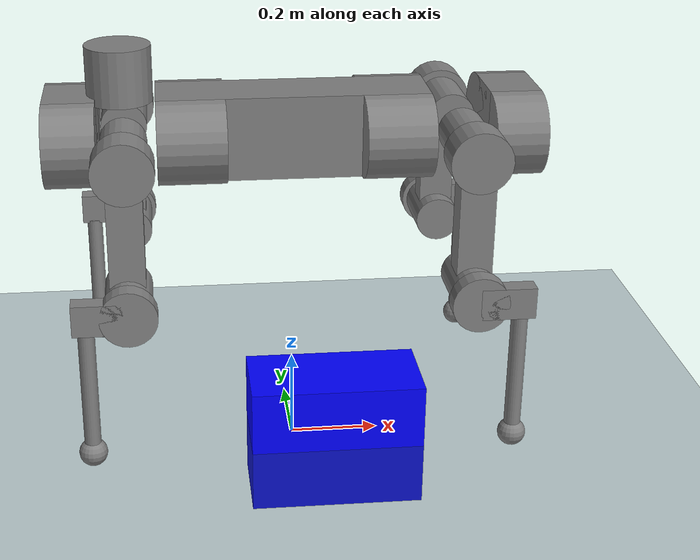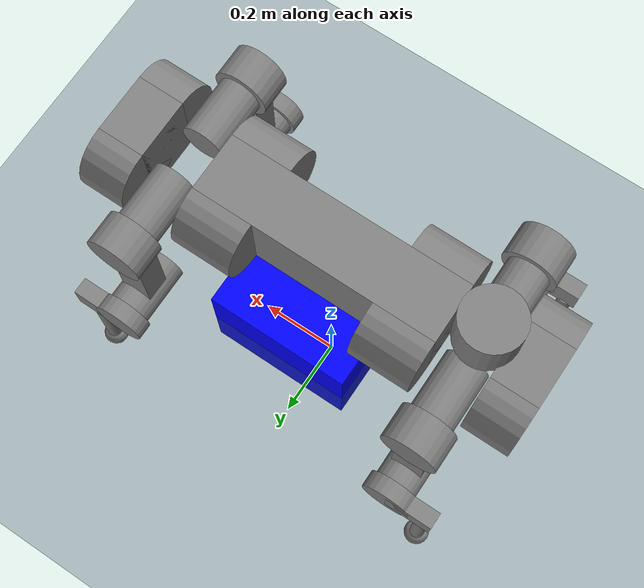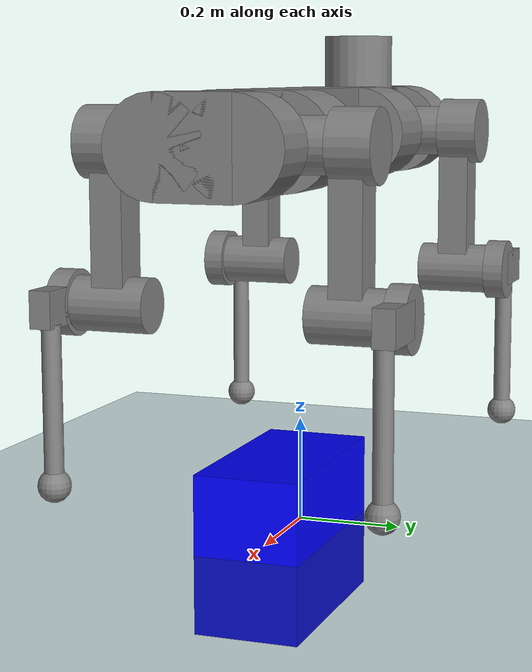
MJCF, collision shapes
<mujoco model="anymal">
  <compiler angle="radian" meshdir="../meshes/"/>

  <asset>
    <texture type="skybox" builtin="gradient" rgb1="0.3 0.5 0.7" rgb2="0 0 0" width="512" height="512" />
    <texture name="texplane" type="2d" builtin="checker" rgb1=".2 .3 .4" rgb2=".1 0.15 0.2" width="512" height="512" mark="cross" markrgb=".8 .8 .8" />
    <material name="matplane" reflectance="0.3" texture="texplane" texrepeat="1 1" texuniform="true" />

    <mesh name="base" file="base.obj"/>
    <mesh name="top_shell" file="top_shell.obj"/>
    <mesh name="bottom_shell" file="bottom_shell.obj"/>
    <mesh name="remote" file="remote.obj"/>
    <mesh name="handle" file="handle.obj"/>
    <mesh name="face" file="face.obj"/>
    <mesh name="depth_camera" file="depth_camera.obj"/>
    <mesh name="wide_angle_camera" file="wide_angle_camera.obj"/>
    <mesh name="battery" file="battery.obj"/>
    <mesh name="lidar_cage" file="lidar_cage.obj"/>
    <mesh name="lidar" file="lidar.obj"/>
    <mesh name="drive" file="drive.obj"/>
    <mesh name="hip_l" file="hip_l.obj"/>
    <mesh name="thigh" file="thigh.obj"/>
    <mesh name="shank_l" file="shank_l.obj"/>
    <mesh name="foot" file="foot.obj"/>
    <mesh name="hip_r" file="hip_r.obj"/>
    <mesh name="shank_r" file="shank_r.obj"/>
    <mesh name="hatch" file="hatch.obj"/>
  </asset>

  <worldbody>
    <light directional="true" diffuse=".4 .4 .4" specular="0.1 0.1 0.1" pos="0 0 5.0" dir="0 0 -1" castshadow="false" />
    <light directional="true" diffuse=".6 .6 .6" specular="0.2 0.2 0.2" pos="0 0 4" dir="0 0 -1" />
    <geom name="floor" pos="0 0 0" size="15 15 1" type="plane" material="matplane" margin="0.001" condim="3" friction="1 0.005 0.0001" />

    <geom type="box" size="0.2 0.1 0.15" pos="0.1 0 0" rgba="0 0 1 0.3"/>

    <geom size="0.0005 0.0005 0.0005" type="box" contype="0" conaffinity="0" group="1" density="0"/>
    <body name="base" pos="0 0 0.75">
      <joint name="floating_base" type="free" limited="false" actuatorfrclimited="false"/>
      <geom type="mesh" contype="0" conaffinity="0" group="1" density="0" mesh="base"/>
      <geom size="0.29 0.07 0.09" type="box" group="2"/>
      <geom size="0.09 0.0725" pos="0.2175 0.07 0" quat="0.707107 0 0.707107 0" type="cylinder" group="2"/>
      <geom size="0.09 0.0725" pos="-0.2175 0.07 0" quat="0.707107 0 0.707107 0" type="cylinder" group="2"/>
      <geom size="0.09 0.0725" pos="0.2175 -0.07 0" quat="0.707107 0 0.707107 0" type="cylinder" group="2"/>
      <geom size="0.09 0.0725" pos="-0.2175 -0.07 0" quat="0.707107 0 0.707107 0" type="cylinder" group="2"/>
      <geom type="mesh" contype="0" conaffinity="0" group="1" density="0" mesh="top_shell"/>
      <geom type="mesh" contype="0" conaffinity="0" group="1" density="0" mesh="bottom_shell"/>
      <geom type="mesh" contype="0" conaffinity="0" group="1" density="0" mesh="remote"/>
      <geom type="mesh" contype="0" conaffinity="0" group="1" density="0" mesh="handle"/>
      <geom pos="0.4145 0 0" quat="1 0 0 0" type="mesh" contype="0" conaffinity="0" group="1" density="0" mesh="face"/>
      <geom size="0.055 0.07 0.09" pos="0.4695 0 0" type="box" group="2"/>
      <geom size="0.09 0.055" pos="0.4695 0.07 0" quat="0.707107 0 0.707107 0" type="cylinder" group="2"/>
      <geom size="0.09 0.055" pos="0.4695 -0.07 0" quat="0.707107 0 0.707107 0" type="cylinder" group="2"/>
      <geom pos="0.46165 0 -0.0292" quat="0.965926 0 0.258819 0" type="mesh" contype="0" conaffinity="0" group="1" density="0" mesh="depth_camera"/>
      <geom pos="0.513 0 0.01497" type="mesh" contype="0" conaffinity="0" group="1" density="0" mesh="wide_angle_camera"/>
      <geom pos="-0.4145 0 0" quat="0 0 0 1" type="mesh" contype="0" conaffinity="0" group="1" density="0" mesh="face"/>
      <geom size="0.055 0.07 0.09" pos="-0.4695 0 0" quat="0 0 0 1" type="box" group="2"/>
      <geom size="0.09 0.055" pos="-0.4695 -0.07 0" quat="0 -0.707107 0 0.707107" type="cylinder" group="2"/>
      <geom size="0.09 0.055" pos="-0.4695 0.07 0" quat="0 -0.707107 0 0.707107" type="cylinder" group="2"/>
      <geom pos="-0.46165 0 -0.0292" quat="0 -0.258819 0 0.965926" type="mesh" contype="0" conaffinity="0" group="1" density="0" mesh="depth_camera"/>
      <geom pos="-0.513 0 0.01497" quat="0 0 0 1" type="mesh" contype="0" conaffinity="0" group="1" density="0" mesh="wide_angle_camera"/>
      <geom type="mesh" contype="0" conaffinity="0" group="1" density="0" mesh="battery"/>
      <geom size="0.012 0.012 0.005" pos="0.2488 0.00835 0.05128" quat="0.707107 0 0 0.707107" type="box" contype="0" conaffinity="0" group="1" density="0"/>
      <geom size="0.012 0.012 0.005" pos="0.2488 0.00835 0.05128" quat="0.707107 0 0 0.707107" type="box" group="2"/>
      <geom pos="0 0.07646 0.02905" quat="0.683013 -0.183013 0.183013 0.683013" type="mesh" contype="0" conaffinity="0" group="1" density="0" mesh="depth_camera"/>
      <geom pos="0 -0.07646 0.02905" quat="0.683013 0.183013 0.183013 -0.683013" type="mesh" contype="0" conaffinity="0" group="1" density="0" mesh="depth_camera"/>
      <geom pos="-0.364 0 0.0735" type="mesh" contype="0" conaffinity="0" group="1" density="0" mesh="lidar_cage"/>
      <geom size="0.07 0.06" pos="-0.364 0 0.1335" type="cylinder" group="2"/>
      <geom pos="-0.364 0 0.1422" quat="0.707107 0 0 -0.707107" type="mesh" contype="0" conaffinity="0" group="1" density="0" mesh="lidar"/>
      <geom pos="0.2999 0.104 0" quat="0.258819 0.965926 0 0" type="mesh" contype="0" conaffinity="0" group="1" density="0" mesh="drive"/>
      <geom pos="0.2999 -0.104 0" quat="0.258819 -0.965926 0 0" type="mesh" contype="0" conaffinity="0" group="1" density="0" mesh="drive"/>
      <geom pos="-0.2999 0.104 0" quat="0 0 0.965926 -0.258819" type="mesh" contype="0" conaffinity="0" group="1" density="0" mesh="drive"/>
      <geom pos="-0.2999 -0.104 0" quat="0 0 -0.965926 -0.258819" type="mesh" contype="0" conaffinity="0" group="1" density="0" mesh="drive"/>
      <geom pos="0.116 0 0.073" quat="1 0 0 0" type="mesh" contype="0" conaffinity="0" group="1" density="0" mesh="hatch"/>
      <body name="LF_HIP" pos="0.2999 0.104 0" quat="0.258819 0.965926 0 0">
        <inertial pos="0.0566606 -0.015294 -0.00829784" quat="-0.127978 0.709783 -0.135278 0.679359" mass="2.781" diaginertia="0.00585729 0.00491868 0.00329081"/>
        <joint name="LF_HAA" pos="0 0 0" axis="1 0 0" range="-0.72 0.49" actuatorfrcrange="-80 80"/>
        <geom pos="0 0 0" quat="0.258819 -0.965926 0 0" type="mesh" contype="0" conaffinity="0" group="1" density="0" mesh="hip_l"/>
        <geom pos="0.0599 -0.0725816 -0.041905" quat="0.183013 -0.683013 0.683013 0.183013" type="mesh" contype="0" conaffinity="0" group="1" density="0" mesh="drive"/>
        <geom size="0.05 0.07" pos="0.0599 -0.0119598 -0.006905" quat="-0.353553 -0.612372 0.612372 -0.353553" type="cylinder" group="2"/>
        <body name="LF_THIGH" pos="0.0599 -0.0725816 -0.041905" quat="0.183013 -0.683013 0.683013 0.183013">
          <inertial pos="0.0308147 4.64995e-05 -0.245696" quat="0.993166 -0.00515309 -0.0806592 0.0841972" mass="3.071" diaginertia="0.03025 0.0298943 0.00418465"/>
          <joint name="LF_HFE" pos="0 0 0" axis="1 0 0" range="-9.42478 9.42478" actuatorfrcrange="-80 80"/>
          <geom pos="0 0 0" quat="0.707107 0 0 -0.707107" type="mesh" contype="0" conaffinity="0" group="1" density="0" mesh="thigh"/>
          <geom size="0.065 0.04" pos="0.04 0 0" quat="0.5 0.5 -0.5 -0.5" type="cylinder" group="2"/>
          <geom size="0.0375 0.03 0.141314" pos="0.03 0 -0.141314" quat="0.707107 0 0 -0.707107" type="box" group="2"/>
          <geom pos="0.1003 0 -0.285" quat="1 0 0 0" type="mesh" contype="0" conaffinity="0" group="1" density="0" mesh="drive"/>
          <geom size="0.05 0.07" pos="0.0303 0 -0.285" quat="0.707107 0 0.707107 0" type="cylinder" group="2"/>
          <body name="LF_SHANK" pos="0.1003 0 -0.285">
            <inertial pos="0.005462 -0.0612528 -0.0806598" quat="0.992934 -0.115904 -0.00105487 -0.0254421" mass="0.58842" diaginertia="0.0101637 0.00923838 0.00111927"/>
            <joint name="LF_KFE" pos="0 0 0" axis="1 0 0" range="-9.42478 9.42478" actuatorfrcrange="-80 80"/>
            <geom quat="0.707107 0 0 -0.707107" type="mesh" contype="0" conaffinity="0" group="1" density="0" mesh="shank_l"/>
            <geom size="0.06 0.02" pos="0.02 0 0" quat="0.5 0.5 -0.5 -0.5" type="cylinder" group="2"/>
            <geom size="0.057499 0.03375 0.02" pos="0.02 -0.057499 0" quat="0.5 0.5 -0.5 -0.5" type="box" group="2"/>
            <geom pos="0.01305 -0.08795 -0.33797" quat="0.382683 0 0 -0.92388" type="mesh" contype="0" conaffinity="0" group="1" density="0" mesh="foot"/>
            <geom size="0.0175 0.141252" pos="0.01305 -0.08795 -0.168985" quat="0.707107 0 0 -0.707107" type="cylinder" group="2"/>
            <geom size="0.03" pos="0.01305 -0.08795 -0.31547" quat="0.707107 0 0 -0.707107" group="2"/>
          </body>
        </body>
      </body>
      <body name="RF_HIP" pos="0.2999 -0.104 0" quat="0.258819 -0.965926 0 0">
        <inertial pos="0.0567633 0.015294 -0.00829784" quat="0.13524 0.679072 0.127985 0.710065" mass="2.781" diaginertia="0.00585928 0.0049205 0.00329064"/>
        <joint name="RF_HAA" pos="0 0 0" axis="1 0 0" range="-0.49 0.72" actuatorfrcrange="-80 80"/>
        <geom pos="0 0 0" quat="0.258819 0.965926 0 0" type="mesh" contype="0" conaffinity="0" group="1" density="0" mesh="hip_r"/>
        <geom pos="0.0599 0.0725816 -0.041905" quat="0.183013 0.683013 0.683013 -0.183013" type="mesh" contype="0" conaffinity="0" group="1" density="0" mesh="drive"/>
        <geom size="0.05 0.07" pos="0.0599 0.0119598 -0.006905" quat="-0.353553 0.612372 0.612372 0.353553" type="cylinder" group="2"/>
        <body name="RF_THIGH" pos="0.0599 0.0725816 -0.041905" quat="0.183013 0.683013 0.683013 -0.183013">
          <inertial pos="0.0308147 4.64995e-05 -0.245696" quat="0.992775 -0.00512735 -0.0806685 0.0886811" mass="3.071" diaginertia="0.0302511 0.0298933 0.0041845"/>
          <joint name="RF_HFE" pos="0 0 0" axis="-1 0 0" range="-9.42478 9.42478" actuatorfrcrange="-80 80"/>
          <geom pos="0 0 0" quat="0.707107 0 0 -0.707107" type="mesh" contype="0" conaffinity="0" group="1" density="0" mesh="thigh"/>
          <geom size="0.065 0.04" pos="0.04 0 0" quat="0.5 0.5 0.5 0.5" type="cylinder" group="2"/>
          <geom size="0.0375 0.03 0.141314" pos="0.03 0 -0.141314" quat="0.707107 0 0 0.707107" type="box" group="2"/>
          <geom pos="0.1003 0 -0.285" quat="1 0 0 0" type="mesh" contype="0" conaffinity="0" group="1" density="0" mesh="drive"/>
          <geom size="0.05 0.07" pos="0.0303 0 -0.285" quat="0.707107 0 0.707107 0" type="cylinder" group="2"/>
          <body name="RF_SHANK" pos="0.1003 0 -0.285">
            <inertial pos="0.005462 0.0612528 -0.0806598" quat="0.992934 0.115904 -0.00105487 0.0254421" mass="0.58842" diaginertia="0.0101637 0.00923838 0.00111927"/>
            <joint name="RF_KFE" pos="0 0 0" axis="-1 0 0" range="-9.42478 9.42478" actuatorfrcrange="-80 80"/>
            <geom quat="0.707107 0 0 0.707107" type="mesh" contype="0" conaffinity="0" group="1" density="0" mesh="shank_r"/>
            <geom size="0.06 0.02" pos="0.02 0 0" quat="0.5 0.5 0.5 0.5" type="cylinder" group="2"/>
            <geom size="0.057499 0.03375 0.02" pos="0.02 0.057499 0" quat="0.5 0.5 0.5 0.5" type="box" group="2"/>
            <geom pos="0.01305 0.08795 -0.33797" quat="0.382683 0 0 0.92388" type="mesh" contype="0" conaffinity="0" group="1" density="0" mesh="foot"/>
            <geom size="0.0175 0.141252" pos="0.01305 0.08795 -0.168985" quat="0.707107 0 0 0.707107" type="cylinder" group="2"/>
            <geom size="0.03" pos="0.01305 0.08795 -0.31547" quat="0.707107 0 0 0.707107" group="2"/>
          </body>
        </body>
      </body>
      <body name="LH_HIP" pos="-0.2999 0.104 0" quat="0 0 0.965926 -0.258819">
        <inertial pos="0.0567633 0.015294 -0.00829784" quat="0.13524 0.679072 0.127985 0.710065" mass="2.781" diaginertia="0.00585928 0.0049205 0.00329064"/>
        <joint name="LH_HAA" pos="0 0 0" axis="-1 0 0" range="-0.72 0.49" actuatorfrcrange="-80 80"/>
        <geom pos="0 0 0" quat="-0.258819 -0.965926 0 0" type="mesh" contype="0" conaffinity="0" group="1" density="0" mesh="hip_r"/>
        <geom pos="0.0599 0.0725816 -0.041905" quat="0.183013 0.683013 0.683013 -0.183013" type="mesh" contype="0" conaffinity="0" group="1" density="0" mesh="drive"/>
        <geom size="0.05 0.07" pos="0.0599 0.0119598 -0.006905" quat="-0.353553 0.612372 0.612372 0.353553" type="cylinder" group="2"/>
        <body name="LH_THIGH" pos="0.0599 0.0725816 -0.041905" quat="0.183013 0.683013 0.683013 -0.183013">
          <inertial pos="0.0308147 4.64995e-05 -0.245696" quat="0.992775 -0.00512735 -0.0806685 0.0886811" mass="3.071" diaginertia="0.0302511 0.0298933 0.0041845"/>
          <joint name="LH_HFE" pos="0 0 0" axis="1 0 0" range="-9.42478 9.42478" actuatorfrcrange="-80 80"/>
          <geom pos="0 0 0" quat="0.707107 0 0 -0.707107" type="mesh" contype="0" conaffinity="0" group="1" density="0" mesh="thigh"/>
          <geom size="0.065 0.04" pos="0.04 0 0" quat="0.5 0.5 -0.5 -0.5" type="cylinder" group="2"/>
          <geom size="0.0375 0.03 0.141314" pos="0.03 0 -0.141314" quat="0.707107 0 0 -0.707107" type="box" group="2"/>
          <geom pos="0.1003 0 -0.285" quat="1 0 0 0" type="mesh" contype="0" conaffinity="0" group="1" density="0" mesh="drive"/>
          <geom size="0.05 0.07" pos="0.0303 0 -0.285" quat="0.707107 0 0.707107 0" type="cylinder" group="2"/>
          <body name="LH_SHANK" pos="0.1003 0 -0.285">
            <inertial pos="0.005462 0.0612528 -0.0806598" quat="0.992934 0.115904 -0.00105487 0.0254421" mass="0.58842" diaginertia="0.0101637 0.00923838 0.00111927"/>
            <joint name="LH_KFE" pos="0 0 0" axis="1 0 0" range="-9.42478 9.42478" actuatorfrcrange="-80 80"/>
            <geom quat="-0.707107 0 0 -0.707107" type="mesh" contype="0" conaffinity="0" group="1" density="0" mesh="shank_r"/>
            <geom size="0.06 0.02" pos="0.02 0 0" quat="0.5 0.5 -0.5 -0.5" type="cylinder" group="2"/>
            <geom size="0.057499 0.03375 0.02" pos="0.02 0.057499 0" quat="0.5 0.5 -0.5 -0.5" type="box" group="2"/>
            <geom pos="0.01305 0.08795 -0.33797" quat="-0.382683 0 0 -0.92388" type="mesh" contype="0" conaffinity="0" group="1" density="0" mesh="foot"/>
            <geom size="0.0175 0.141252" pos="0.01305 0.08795 -0.168985" quat="0.707107 0 0 -0.707107" type="cylinder" group="2"/>
            <geom size="0.03" pos="0.01305 0.08795 -0.31547" quat="0.707107 0 0 -0.707107" group="2"/>
          </body>
        </body>
      </body>
      <body name="RH_HIP" pos="-0.2999 -0.104 0" quat="0 0 -0.965926 -0.258819">
        <inertial pos="0.0566606 -0.015294 -0.00829784" quat="-0.127978 0.709783 -0.135278 0.679359" mass="2.781" diaginertia="0.00585729 0.00491868 0.00329081"/>
        <joint name="RH_HAA" pos="0 0 0" axis="-1 0 0" range="-0.49 0.72" actuatorfrcrange="-80 80"/>
        <geom pos="0 0 0" quat="-0.258819 0.965926 0 0" type="mesh" contype="0" conaffinity="0" group="1" density="0" mesh="hip_l"/>
        <geom pos="0.0599 -0.0725816 -0.041905" quat="-0.183013 0.683013 -0.683013 -0.183013" type="mesh" contype="0" conaffinity="0" group="1" density="0" mesh="drive"/>
        <geom size="0.05 0.07" pos="0.0599 -0.0119598 -0.006905" quat="0.353553 0.612372 -0.612372 0.353553" type="cylinder" group="2"/>
        <body name="RH_THIGH" pos="0.0599 -0.0725816 -0.041905" quat="-0.183013 0.683013 -0.683013 -0.183013">
          <inertial pos="0.0308147 4.64995e-05 -0.245696" quat="0.993166 -0.00515309 -0.0806592 0.0841972" mass="3.071" diaginertia="0.03025 0.0298943 0.00418465"/>
          <joint name="RH_HFE" pos="0 0 0" axis="-1 0 0" range="-9.42478 9.42478" actuatorfrcrange="-80 80"/>
          <geom pos="0 0 0" quat="0.707107 0 0 -0.707107" type="mesh" contype="0" conaffinity="0" group="1" density="0" mesh="thigh"/>
          <geom size="0.065 0.04" pos="0.04 0 0" quat="0.5 0.5 0.5 0.5" type="cylinder" group="2"/>
          <geom size="0.0375 0.03 0.141314" pos="0.03 0 -0.141314" quat="0.707107 0 0 0.707107" type="box" group="2"/>
          <geom pos="0.1003 0 -0.285" quat="1 0 0 0" type="mesh" contype="0" conaffinity="0" group="1" density="0" mesh="drive"/>
          <geom size="0.05 0.07" pos="0.0303 0 -0.285" quat="0.707107 0 0.707107 0" type="cylinder" group="2"/>
          <body name="RH_SHANK" pos="0.1003 0 -0.285">
            <inertial pos="0.005462 -0.0612528 -0.0806598" quat="0.992934 -0.115904 -0.00105487 -0.0254421" mass="0.58842" diaginertia="0.0101637 0.00923838 0.00111927"/>
            <joint name="RH_KFE" pos="0 0 0" axis="-1 0 0" range="-9.42478 9.42478" actuatorfrcrange="-80 80"/>
            <geom quat="0.707107 0 0 -0.707107" type="mesh" contype="0" conaffinity="0" group="1" density="0" mesh="shank_l"/>
            <geom size="0.06 0.02" pos="0.02 0 0" quat="0.5 0.5 0.5 0.5" type="cylinder" group="2"/>
            <geom size="0.057499 0.03375 0.02" pos="0.02 -0.057499 0" quat="0.5 0.5 0.5 0.5" type="box" group="2"/>
            <geom pos="0.01305 -0.08795 -0.33797" quat="0.382683 0 0 -0.92388" type="mesh" contype="0" conaffinity="0" group="1" density="0" mesh="foot"/>
            <geom size="0.0175 0.141252" pos="0.01305 -0.08795 -0.168985" quat="0.707107 0 0 0.707107" type="cylinder" group="2"/>
            <geom size="0.03" pos="0.01305 -0.08795 -0.31547" quat="0.707107 0 0 0.707107"/>
          </body>
        </body>
      </body>
    </body>
  </worldbody>
</mujoco>
